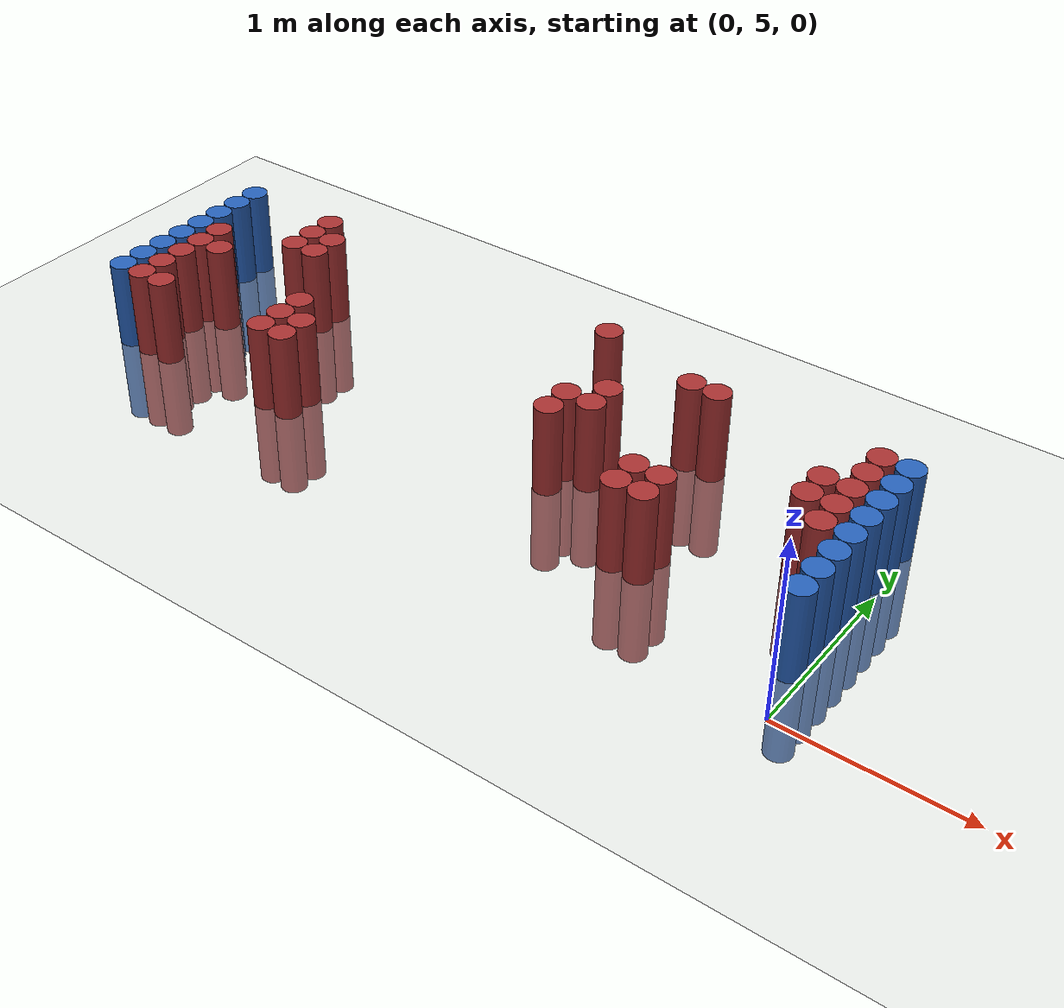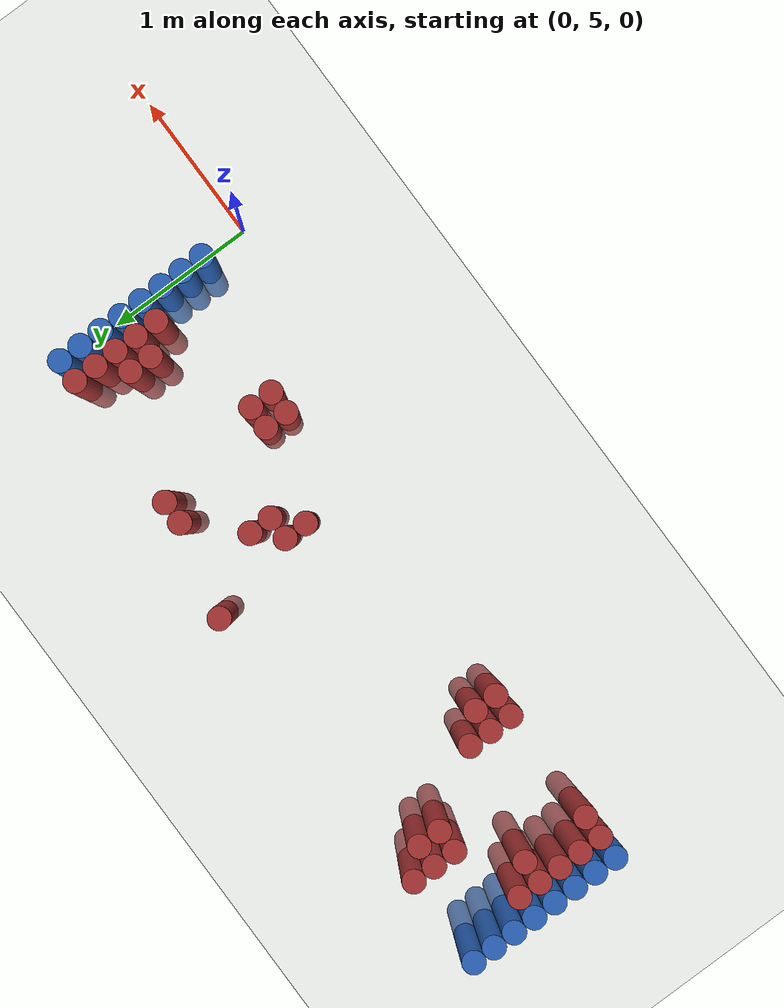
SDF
<sdf version="1.6">
 <world name="default">
  <model name="ground_plane">
   <static>1</static>
   <link name="link">
    <collision name="collision">
     <geometry><plane><normal>0 0 1</normal><size>100 100</size></plane></geometry>
     <surface><friction><ode><mu>100</mu><mu2>50</mu2></ode></friction></surface>
    </collision>
    <visual name="visual">
     <cast_shadows>0</cast_shadows>
     <geometry><plane><normal>0 0 1</normal><size>100 100</size></plane></geometry>
     <material>
      <script><uri>file://media/materials/scripts/gazebo.material</uri><name>Gazebo/Grey</name></script>
     </material>
    </visual>
   </link>
  </model>
  <model name="unit_cylinder_98">
   <static>1</static>
   <pose>-4.425000 5.475000 0.000000 0.000000 0.000000 0.000000</pose>
   <link name="link">
    <inertial>
     <mass>1</mass>
     <inertia><ixx>0.145833</ixx><ixy>0</ixy><ixz>0</ixz><iyy>0.145833</iyy><iyz>0</iyz><izz>0.125</izz></inertia>
    </inertial>
    <collision name="collision">
     <geometry><cylinder><radius>0.075000</radius><length>1</length></cylinder></geometry>
    </collision>
    <visual name="visual">
     <geometry><cylinder><radius>0.075000</radius><length>1</length></cylinder></geometry>
     <material>
      <ambient>0.152000 0.379000 0.720000 1</ambient>
      <diffuse>0.152000 0.379000 0.720000 1</diffuse>
     </material>
     <material>
      <script><name>Gazebo/Grey</name><uri>file://media/materials/scripts/gazebo.material</uri></script>
     </material>
    </visual>
   </link>
  </model>
  <model name="unit_cylinder_99">
   <static>1</static>
   <pose>-4.425000 5.625000 0.000000 0.000000 0.000000 0.000000</pose>
   <link name="link">
    <inertial>
     <mass>1</mass>
     <inertia><ixx>0.145833</ixx><ixy>0</ixy><ixz>0</ixz><iyy>0.145833</iyy><iyz>0</iyz><izz>0.125</izz></inertia>
    </inertial>
    <collision name="collision">
     <geometry><cylinder><radius>0.075000</radius><length>1</length></cylinder></geometry>
    </collision>
    <visual name="visual">
     <geometry><cylinder><radius>0.075000</radius><length>1</length></cylinder></geometry>
     <material>
      <ambient>0.152000 0.379000 0.720000 1</ambient>
      <diffuse>0.152000 0.379000 0.720000 1</diffuse>
     </material>
     <material>
      <script><name>Gazebo/Grey</name><uri>file://media/materials/scripts/gazebo.material</uri></script>
     </material>
    </visual>
   </link>
  </model>
  <model name="unit_cylinder_100">
   <static>1</static>
   <pose>-4.425000 5.775000 0.000000 0.000000 0.000000 0.000000</pose>
   <link name="link">
    <inertial>
     <mass>1</mass>
     <inertia><ixx>0.145833</ixx><ixy>0</ixy><ixz>0</ixz><iyy>0.145833</iyy><iyz>0</iyz><izz>0.125</izz></inertia>
    </inertial>
    <collision name="collision">
     <geometry><cylinder><radius>0.075000</radius><length>1</length></cylinder></geometry>
    </collision>
    <visual name="visual">
     <geometry><cylinder><radius>0.075000</radius><length>1</length></cylinder></geometry>
     <material>
      <ambient>0.152000 0.379000 0.720000 1</ambient>
      <diffuse>0.152000 0.379000 0.720000 1</diffuse>
     </material>
     <material>
      <script><name>Gazebo/Grey</name><uri>file://media/materials/scripts/gazebo.material</uri></script>
     </material>
    </visual>
   </link>
  </model>
  <model name="unit_cylinder_101">
   <static>1</static>
   <pose>-4.425000 5.925000 0.000000 0.000000 0.000000 0.000000</pose>
   <link name="link">
    <inertial>
     <mass>1</mass>
     <inertia><ixx>0.145833</ixx><ixy>0</ixy><ixz>0</ixz><iyy>0.145833</iyy><iyz>0</iyz><izz>0.125</izz></inertia>
    </inertial>
    <collision name="collision">
     <geometry><cylinder><radius>0.075000</radius><length>1</length></cylinder></geometry>
    </collision>
    <visual name="visual">
     <geometry><cylinder><radius>0.075000</radius><length>1</length></cylinder></geometry>
     <material>
      <ambient>0.152000 0.379000 0.720000 1</ambient>
      <diffuse>0.152000 0.379000 0.720000 1</diffuse>
     </material>
     <material>
      <script><name>Gazebo/Grey</name><uri>file://media/materials/scripts/gazebo.material</uri></script>
     </material>
    </visual>
   </link>
  </model>
  <model name="unit_cylinder_102">
   <static>1</static>
   <pose>-4.425000 6.075000 0.000000 0.000000 0.000000 0.000000</pose>
   <link name="link">
    <inertial>
     <mass>1</mass>
     <inertia><ixx>0.145833</ixx><ixy>0</ixy><ixz>0</ixz><iyy>0.145833</iyy><iyz>0</iyz><izz>0.125</izz></inertia>
    </inertial>
    <collision name="collision">
     <geometry><cylinder><radius>0.075000</radius><length>1</length></cylinder></geometry>
    </collision>
    <visual name="visual">
     <geometry><cylinder><radius>0.075000</radius><length>1</length></cylinder></geometry>
     <material>
      <ambient>0.152000 0.379000 0.720000 1</ambient>
      <diffuse>0.152000 0.379000 0.720000 1</diffuse>
     </material>
     <material>
      <script><name>Gazebo/Grey</name><uri>file://media/materials/scripts/gazebo.material</uri></script>
     </material>
    </visual>
   </link>
  </model>
  <model name="unit_cylinder_103">
   <static>1</static>
   <pose>-4.425000 6.225000 0.000000 0.000000 0.000000 0.000000</pose>
   <link name="link">
    <inertial>
     <mass>1</mass>
     <inertia><ixx>0.145833</ixx><ixy>0</ixy><ixz>0</ixz><iyy>0.145833</iyy><iyz>0</iyz><izz>0.125</izz></inertia>
    </inertial>
    <collision name="collision">
     <geometry><cylinder><radius>0.075000</radius><length>1</length></cylinder></geometry>
    </collision>
    <visual name="visual">
     <geometry><cylinder><radius>0.075000</radius><length>1</length></cylinder></geometry>
     <material>
      <ambient>0.152000 0.379000 0.720000 1</ambient>
      <diffuse>0.152000 0.379000 0.720000 1</diffuse>
     </material>
     <material>
      <script><name>Gazebo/Grey</name><uri>file://media/materials/scripts/gazebo.material</uri></script>
     </material>
    </visual>
   </link>
  </model>
  <model name="unit_cylinder_104">
   <static>1</static>
   <pose>-4.425000 6.375000 0.000000 0.000000 0.000000 0.000000</pose>
   <link name="link">
    <inertial>
     <mass>1</mass>
     <inertia><ixx>0.145833</ixx><ixy>0</ixy><ixz>0</ixz><iyy>0.145833</iyy><iyz>0</iyz><izz>0.125</izz></inertia>
    </inertial>
    <collision name="collision">
     <geometry><cylinder><radius>0.075000</radius><length>1</length></cylinder></geometry>
    </collision>
    <visual name="visual">
     <geometry><cylinder><radius>0.075000</radius><length>1</length></cylinder></geometry>
     <material>
      <ambient>0.152000 0.379000 0.720000 1</ambient>
      <diffuse>0.152000 0.379000 0.720000 1</diffuse>
     </material>
     <material>
      <script><name>Gazebo/Grey</name><uri>file://media/materials/scripts/gazebo.material</uri></script>
     </material>
    </visual>
   </link>
  </model>
  <model name="unit_cylinder_105">
   <static>1</static>
   <pose>-4.425000 6.525000 0.000000 0.000000 0.000000 0.000000</pose>
   <link name="link">
    <inertial>
     <mass>1</mass>
     <inertia><ixx>0.145833</ixx><ixy>0</ixy><ixz>0</ixz><iyy>0.145833</iyy><iyz>0</iyz><izz>0.125</izz></inertia>
    </inertial>
    <collision name="collision">
     <geometry><cylinder><radius>0.075000</radius><length>1</length></cylinder></geometry>
    </collision>
    <visual name="visual">
     <geometry><cylinder><radius>0.075000</radius><length>1</length></cylinder></geometry>
     <material>
      <ambient>0.152000 0.379000 0.720000 1</ambient>
      <diffuse>0.152000 0.379000 0.720000 1</diffuse>
     </material>
     <material>
      <script><name>Gazebo/Grey</name><uri>file://media/materials/scripts/gazebo.material</uri></script>
     </material>
    </visual>
   </link>
  </model>
  <model name="unit_cylinder_127">
   <static>1</static>
   <pose>-4.275000 5.475000 0.000000 0.000000 0.000000 0.000000</pose>
   <link name="link">
    <inertial>
     <mass>1</mass>
     <inertia><ixx>0.145833</ixx><ixy>0</ixy><ixz>0</ixz><iyy>0.145833</iyy><iyz>0</iyz><izz>0.125</izz></inertia>
    </inertial>
    <collision name="collision">
     <geometry><cylinder><radius>0.075000</radius><length>1</length></cylinder></geometry>
    </collision>
    <visual name="visual">
     <geometry><cylinder><radius>0.075000</radius><length>1</length></cylinder></geometry>
     <material>
      <ambient>0.648000 0.192000 0.192000 1</ambient>
      <diffuse>0.648000 0.192000 0.192000 1</diffuse>
     </material>
     <material>
      <script><name>Gazebo/Grey</name><uri>file://media/materials/scripts/gazebo.material</uri></script>
     </material>
    </visual>
   </link>
  </model>
  <model name="unit_cylinder_128">
   <static>1</static>
   <pose>-4.275000 5.625000 0.000000 0.000000 0.000000 0.000000</pose>
   <link name="link">
    <inertial>
     <mass>1</mass>
     <inertia><ixx>0.145833</ixx><ixy>0</ixy><ixz>0</ixz><iyy>0.145833</iyy><iyz>0</iyz><izz>0.125</izz></inertia>
    </inertial>
    <collision name="collision">
     <geometry><cylinder><radius>0.075000</radius><length>1</length></cylinder></geometry>
    </collision>
    <visual name="visual">
     <geometry><cylinder><radius>0.075000</radius><length>1</length></cylinder></geometry>
     <material>
      <ambient>0.648000 0.192000 0.192000 1</ambient>
      <diffuse>0.648000 0.192000 0.192000 1</diffuse>
     </material>
     <material>
      <script><name>Gazebo/Grey</name><uri>file://media/materials/scripts/gazebo.material</uri></script>
     </material>
    </visual>
   </link>
  </model>
  <model name="unit_cylinder_129">
   <static>1</static>
   <pose>-4.275000 5.775000 0.000000 0.000000 0.000000 0.000000</pose>
   <link name="link">
    <inertial>
     <mass>1</mass>
     <inertia><ixx>0.145833</ixx><ixy>0</ixy><ixz>0</ixz><iyy>0.145833</iyy><iyz>0</iyz><izz>0.125</izz></inertia>
    </inertial>
    <collision name="collision">
     <geometry><cylinder><radius>0.075000</radius><length>1</length></cylinder></geometry>
    </collision>
    <visual name="visual">
     <geometry><cylinder><radius>0.075000</radius><length>1</length></cylinder></geometry>
     <material>
      <ambient>0.648000 0.192000 0.192000 1</ambient>
      <diffuse>0.648000 0.192000 0.192000 1</diffuse>
     </material>
     <material>
      <script><name>Gazebo/Grey</name><uri>file://media/materials/scripts/gazebo.material</uri></script>
     </material>
    </visual>
   </link>
  </model>
  <model name="unit_cylinder_130">
   <static>1</static>
   <pose>-4.275000 5.925000 0.000000 0.000000 0.000000 0.000000</pose>
   <link name="link">
    <inertial>
     <mass>1</mass>
     <inertia><ixx>0.145833</ixx><ixy>0</ixy><ixz>0</ixz><iyy>0.145833</iyy><iyz>0</iyz><izz>0.125</izz></inertia>
    </inertial>
    <collision name="collision">
     <geometry><cylinder><radius>0.075000</radius><length>1</length></cylinder></geometry>
    </collision>
    <visual name="visual">
     <geometry><cylinder><radius>0.075000</radius><length>1</length></cylinder></geometry>
     <material>
      <ambient>0.648000 0.192000 0.192000 1</ambient>
      <diffuse>0.648000 0.192000 0.192000 1</diffuse>
     </material>
     <material>
      <script><name>Gazebo/Grey</name><uri>file://media/materials/scripts/gazebo.material</uri></script>
     </material>
    </visual>
   </link>
  </model>
  <model name="unit_cylinder_131">
   <static>1</static>
   <pose>-4.275000 6.075000 0.000000 0.000000 0.000000 0.000000</pose>
   <link name="link">
    <inertial>
     <mass>1</mass>
     <inertia><ixx>0.145833</ixx><ixy>0</ixy><ixz>0</ixz><iyy>0.145833</iyy><iyz>0</iyz><izz>0.125</izz></inertia>
    </inertial>
    <collision name="collision">
     <geometry><cylinder><radius>0.075000</radius><length>1</length></cylinder></geometry>
    </collision>
    <visual name="visual">
     <geometry><cylinder><radius>0.075000</radius><length>1</length></cylinder></geometry>
     <material>
      <ambient>0.648000 0.192000 0.192000 1</ambient>
      <diffuse>0.648000 0.192000 0.192000 1</diffuse>
     </material>
     <material>
      <script><name>Gazebo/Grey</name><uri>file://media/materials/scripts/gazebo.material</uri></script>
     </material>
    </visual>
   </link>
  </model>
  <model name="unit_cylinder_143">
   <static>1</static>
   <pose>-4.125000 5.475000 0.000000 0.000000 0.000000 0.000000</pose>
   <link name="link">
    <inertial>
     <mass>1</mass>
     <inertia><ixx>0.145833</ixx><ixy>0</ixy><ixz>0</ixz><iyy>0.145833</iyy><iyz>0</iyz><izz>0.125</izz></inertia>
    </inertial>
    <collision name="collision">
     <geometry><cylinder><radius>0.075000</radius><length>1</length></cylinder></geometry>
    </collision>
    <visual name="visual">
     <geometry><cylinder><radius>0.075000</radius><length>1</length></cylinder></geometry>
     <material>
      <ambient>0.648000 0.192000 0.192000 1</ambient>
      <diffuse>0.648000 0.192000 0.192000 1</diffuse>
     </material>
     <material>
      <script><name>Gazebo/Grey</name><uri>file://media/materials/scripts/gazebo.material</uri></script>
     </material>
    </visual>
   </link>
  </model>
  <model name="unit_cylinder_144">
   <static>1</static>
   <pose>-4.125000 5.925000 0.000000 0.000000 0.000000 0.000000</pose>
   <link name="link">
    <inertial>
     <mass>1</mass>
     <inertia><ixx>0.145833</ixx><ixy>0</ixy><ixz>0</ixz><iyy>0.145833</iyy><iyz>0</iyz><izz>0.125</izz></inertia>
    </inertial>
    <collision name="collision">
     <geometry><cylinder><radius>0.075000</radius><length>1</length></cylinder></geometry>
    </collision>
    <visual name="visual">
     <geometry><cylinder><radius>0.075000</radius><length>1</length></cylinder></geometry>
     <material>
      <ambient>0.648000 0.192000 0.192000 1</ambient>
      <diffuse>0.648000 0.192000 0.192000 1</diffuse>
     </material>
     <material>
      <script><name>Gazebo/Grey</name><uri>file://media/materials/scripts/gazebo.material</uri></script>
     </material>
    </visual>
   </link>
  </model>
  <model name="unit_cylinder_157">
   <static>1</static>
   <pose>-3.825000 6.225000 0.000000 0.000000 0.000000 0.000000</pose>
   <link name="link">
    <inertial>
     <mass>1</mass>
     <inertia><ixx>0.145833</ixx><ixy>0</ixy><ixz>0</ixz><iyy>0.145833</iyy><iyz>0</iyz><izz>0.125</izz></inertia>
    </inertial>
    <collision name="collision">
     <geometry><cylinder><radius>0.075000</radius><length>1</length></cylinder></geometry>
    </collision>
    <visual name="visual">
     <geometry><cylinder><radius>0.075000</radius><length>1</length></cylinder></geometry>
     <material>
      <ambient>0.648000 0.192000 0.192000 1</ambient>
      <diffuse>0.648000 0.192000 0.192000 1</diffuse>
     </material>
     <material>
      <script><name>Gazebo/Grey</name><uri>file://media/materials/scripts/gazebo.material</uri></script>
     </material>
    </visual>
   </link>
  </model>
  <model name="unit_cylinder_158">
   <static>1</static>
   <pose>-3.825000 6.375000 0.000000 0.000000 0.000000 0.000000</pose>
   <link name="link">
    <inertial>
     <mass>1</mass>
     <inertia><ixx>0.145833</ixx><ixy>0</ixy><ixz>0</ixz><iyy>0.145833</iyy><iyz>0</iyz><izz>0.125</izz></inertia>
    </inertial>
    <collision name="collision">
     <geometry><cylinder><radius>0.075000</radius><length>1</length></cylinder></geometry>
    </collision>
    <visual name="visual">
     <geometry><cylinder><radius>0.075000</radius><length>1</length></cylinder></geometry>
     <material>
      <ambient>0.648000 0.192000 0.192000 1</ambient>
      <diffuse>0.648000 0.192000 0.192000 1</diffuse>
     </material>
     <material>
      <script><name>Gazebo/Grey</name><uri>file://media/materials/scripts/gazebo.material</uri></script>
     </material>
    </visual>
   </link>
  </model>
  <model name="unit_cylinder_159">
   <static>1</static>
   <pose>-3.825000 6.525000 0.000000 0.000000 0.000000 0.000000</pose>
   <link name="link">
    <inertial>
     <mass>1</mass>
     <inertia><ixx>0.145833</ixx><ixy>0</ixy><ixz>0</ixz><iyy>0.145833</iyy><iyz>0</iyz><izz>0.125</izz></inertia>
    </inertial>
    <collision name="collision">
     <geometry><cylinder><radius>0.075000</radius><length>1</length></cylinder></geometry>
    </collision>
    <visual name="visual">
     <geometry><cylinder><radius>0.075000</radius><length>1</length></cylinder></geometry>
     <material>
      <ambient>0.648000 0.192000 0.192000 1</ambient>
      <diffuse>0.648000 0.192000 0.192000 1</diffuse>
     </material>
     <material>
      <script><name>Gazebo/Grey</name><uri>file://media/materials/scripts/gazebo.material</uri></script>
     </material>
    </visual>
   </link>
  </model>
  <model name="unit_cylinder_162">
   <static>1</static>
   <pose>-3.675000 6.225000 0.000000 0.000000 0.000000 0.000000</pose>
   <link name="link">
    <inertial>
     <mass>1</mass>
     <inertia><ixx>0.145833</ixx><ixy>0</ixy><ixz>0</ixz><iyy>0.145833</iyy><iyz>0</iyz><izz>0.125</izz></inertia>
    </inertial>
    <collision name="collision">
     <geometry><cylinder><radius>0.075000</radius><length>1</length></cylinder></geometry>
    </collision>
    <visual name="visual">
     <geometry><cylinder><radius>0.075000</radius><length>1</length></cylinder></geometry>
     <material>
      <ambient>0.648000 0.192000 0.192000 1</ambient>
      <diffuse>0.648000 0.192000 0.192000 1</diffuse>
     </material>
     <material>
      <script><name>Gazebo/Grey</name><uri>file://media/materials/scripts/gazebo.material</uri></script>
     </material>
    </visual>
   </link>
  </model>
  <model name="unit_cylinder_163">
   <static>1</static>
   <pose>-3.675000 6.375000 0.000000 0.000000 0.000000 0.000000</pose>
   <link name="link">
    <inertial>
     <mass>1</mass>
     <inertia><ixx>0.145833</ixx><ixy>0</ixy><ixz>0</ixz><iyy>0.145833</iyy><iyz>0</iyz><izz>0.125</izz></inertia>
    </inertial>
    <collision name="collision">
     <geometry><cylinder><radius>0.075000</radius><length>1</length></cylinder></geometry>
    </collision>
    <visual name="visual">
     <geometry><cylinder><radius>0.075000</radius><length>1</length></cylinder></geometry>
     <material>
      <ambient>0.648000 0.192000 0.192000 1</ambient>
      <diffuse>0.648000 0.192000 0.192000 1</diffuse>
     </material>
     <material>
      <script><name>Gazebo/Grey</name><uri>file://media/materials/scripts/gazebo.material</uri></script>
     </material>
    </visual>
   </link>
  </model>
  <model name="unit_cylinder_171">
   <static>1</static>
   <pose>-3.375000 5.475000 0.000000 0.000000 0.000000 0.000000</pose>
   <link name="link">
    <inertial>
     <mass>1</mass>
     <inertia><ixx>0.145833</ixx><ixy>0</ixy><ixz>0</ixz><iyy>0.145833</iyy><iyz>0</iyz><izz>0.125</izz></inertia>
    </inertial>
    <collision name="collision">
     <geometry><cylinder><radius>0.075000</radius><length>1</length></cylinder></geometry>
    </collision>
    <visual name="visual">
     <geometry><cylinder><radius>0.075000</radius><length>1</length></cylinder></geometry>
     <material>
      <ambient>0.648000 0.192000 0.192000 1</ambient>
      <diffuse>0.648000 0.192000 0.192000 1</diffuse>
     </material>
     <material>
      <script><name>Gazebo/Grey</name><uri>file://media/materials/scripts/gazebo.material</uri></script>
     </material>
    </visual>
   </link>
  </model>
  <model name="unit_cylinder_172">
   <static>1</static>
   <pose>-3.375000 5.625000 0.000000 0.000000 0.000000 0.000000</pose>
   <link name="link">
    <inertial>
     <mass>1</mass>
     <inertia><ixx>0.145833</ixx><ixy>0</ixy><ixz>0</ixz><iyy>0.145833</iyy><iyz>0</iyz><izz>0.125</izz></inertia>
    </inertial>
    <collision name="collision">
     <geometry><cylinder><radius>0.075000</radius><length>1</length></cylinder></geometry>
    </collision>
    <visual name="visual">
     <geometry><cylinder><radius>0.075000</radius><length>1</length></cylinder></geometry>
     <material>
      <ambient>0.648000 0.192000 0.192000 1</ambient>
      <diffuse>0.648000 0.192000 0.192000 1</diffuse>
     </material>
     <material>
      <script><name>Gazebo/Grey</name><uri>file://media/materials/scripts/gazebo.material</uri></script>
     </material>
    </visual>
   </link>
  </model>
  <model name="unit_cylinder_173">
   <static>1</static>
   <pose>-3.375000 5.775000 0.000000 0.000000 0.000000 0.000000</pose>
   <link name="link">
    <inertial>
     <mass>1</mass>
     <inertia><ixx>0.145833</ixx><ixy>0</ixy><ixz>0</ixz><iyy>0.145833</iyy><iyz>0</iyz><izz>0.125</izz></inertia>
    </inertial>
    <collision name="collision">
     <geometry><cylinder><radius>0.075000</radius><length>1</length></cylinder></geometry>
    </collision>
    <visual name="visual">
     <geometry><cylinder><radius>0.075000</radius><length>1</length></cylinder></geometry>
     <material>
      <ambient>0.648000 0.192000 0.192000 1</ambient>
      <diffuse>0.648000 0.192000 0.192000 1</diffuse>
     </material>
     <material>
      <script><name>Gazebo/Grey</name><uri>file://media/materials/scripts/gazebo.material</uri></script>
     </material>
    </visual>
   </link>
  </model>
  <model name="unit_cylinder_180">
   <static>1</static>
   <pose>-3.225000 5.475000 0.000000 0.000000 0.000000 0.000000</pose>
   <link name="link">
    <inertial>
     <mass>1</mass>
     <inertia><ixx>0.145833</ixx><ixy>0</ixy><ixz>0</ixz><iyy>0.145833</iyy><iyz>0</iyz><izz>0.125</izz></inertia>
    </inertial>
    <collision name="collision">
     <geometry><cylinder><radius>0.075000</radius><length>1</length></cylinder></geometry>
    </collision>
    <visual name="visual">
     <geometry><cylinder><radius>0.075000</radius><length>1</length></cylinder></geometry>
     <material>
      <ambient>0.648000 0.192000 0.192000 1</ambient>
      <diffuse>0.648000 0.192000 0.192000 1</diffuse>
     </material>
     <material>
      <script><name>Gazebo/Grey</name><uri>file://media/materials/scripts/gazebo.material</uri></script>
     </material>
    </visual>
   </link>
  </model>
  <model name="unit_cylinder_181">
   <static>1</static>
   <pose>-3.225000 5.625000 0.000000 0.000000 0.000000 0.000000</pose>
   <link name="link">
    <inertial>
     <mass>1</mass>
     <inertia><ixx>0.145833</ixx><ixy>0</ixy><ixz>0</ixz><iyy>0.145833</iyy><iyz>0</iyz><izz>0.125</izz></inertia>
    </inertial>
    <collision name="collision">
     <geometry><cylinder><radius>0.075000</radius><length>1</length></cylinder></geometry>
    </collision>
    <visual name="visual">
     <geometry><cylinder><radius>0.075000</radius><length>1</length></cylinder></geometry>
     <material>
      <ambient>0.648000 0.192000 0.192000 1</ambient>
      <diffuse>0.648000 0.192000 0.192000 1</diffuse>
     </material>
     <material>
      <script><name>Gazebo/Grey</name><uri>file://media/materials/scripts/gazebo.material</uri></script>
     </material>
    </visual>
   </link>
  </model>
  <model name="unit_cylinder_198">
   <static>1</static>
   <pose>-1.875000 6.525000 0.000000 0.000000 0.000000 0.000000</pose>
   <link name="link">
    <inertial>
     <mass>1</mass>
     <inertia><ixx>0.145833</ixx><ixy>0</ixy><ixz>0</ixz><iyy>0.145833</iyy><iyz>0</iyz><izz>0.125</izz></inertia>
    </inertial>
    <collision name="collision">
     <geometry><cylinder><radius>0.075000</radius><length>1</length></cylinder></geometry>
    </collision>
    <visual name="visual">
     <geometry><cylinder><radius>0.075000</radius><length>1</length></cylinder></geometry>
     <material>
      <ambient>0.648000 0.192000 0.192000 1</ambient>
      <diffuse>0.648000 0.192000 0.192000 1</diffuse>
     </material>
     <material>
      <script><name>Gazebo/Grey</name><uri>file://media/materials/scripts/gazebo.material</uri></script>
     </material>
    </visual>
   </link>
  </model>
  <model name="unit_cylinder_203">
   <static>1</static>
   <pose>-1.725000 5.775000 0.000000 0.000000 0.000000 0.000000</pose>
   <link name="link">
    <inertial>
     <mass>1</mass>
     <inertia><ixx>0.145833</ixx><ixy>0</ixy><ixz>0</ixz><iyy>0.145833</iyy><iyz>0</iyz><izz>0.125</izz></inertia>
    </inertial>
    <collision name="collision">
     <geometry><cylinder><radius>0.075000</radius><length>1</length></cylinder></geometry>
    </collision>
    <visual name="visual">
     <geometry><cylinder><radius>0.075000</radius><length>1</length></cylinder></geometry>
     <material>
      <ambient>0.648000 0.192000 0.192000 1</ambient>
      <diffuse>0.648000 0.192000 0.192000 1</diffuse>
     </material>
     <material>
      <script><name>Gazebo/Grey</name><uri>file://media/materials/scripts/gazebo.material</uri></script>
     </material>
    </visual>
   </link>
  </model>
  <model name="unit_cylinder_204">
   <static>1</static>
   <pose>-1.725000 5.925000 0.000000 0.000000 0.000000 0.000000</pose>
   <link name="link">
    <inertial>
     <mass>1</mass>
     <inertia><ixx>0.145833</ixx><ixy>0</ixy><ixz>0</ixz><iyy>0.145833</iyy><iyz>0</iyz><izz>0.125</izz></inertia>
    </inertial>
    <collision name="collision">
     <geometry><cylinder><radius>0.075000</radius><length>1</length></cylinder></geometry>
    </collision>
    <visual name="visual">
     <geometry><cylinder><radius>0.075000</radius><length>1</length></cylinder></geometry>
     <material>
      <ambient>0.648000 0.192000 0.192000 1</ambient>
      <diffuse>0.648000 0.192000 0.192000 1</diffuse>
     </material>
     <material>
      <script><name>Gazebo/Grey</name><uri>file://media/materials/scripts/gazebo.material</uri></script>
     </material>
    </visual>
   </link>
  </model>
  <model name="unit_cylinder_215">
   <static>1</static>
   <pose>-1.575000 5.925000 0.000000 0.000000 0.000000 0.000000</pose>
   <link name="link">
    <inertial>
     <mass>1</mass>
     <inertia><ixx>0.145833</ixx><ixy>0</ixy><ixz>0</ixz><iyy>0.145833</iyy><iyz>0</iyz><izz>0.125</izz></inertia>
    </inertial>
    <collision name="collision">
     <geometry><cylinder><radius>0.075000</radius><length>1</length></cylinder></geometry>
    </collision>
    <visual name="visual">
     <geometry><cylinder><radius>0.075000</radius><length>1</length></cylinder></geometry>
     <material>
      <ambient>0.648000 0.192000 0.192000 1</ambient>
      <diffuse>0.648000 0.192000 0.192000 1</diffuse>
     </material>
     <material>
      <script><name>Gazebo/Grey</name><uri>file://media/materials/scripts/gazebo.material</uri></script>
     </material>
    </visual>
   </link>
  </model>
  <model name="unit_cylinder_216">
   <static>1</static>
   <pose>-1.575000 6.075000 0.000000 0.000000 0.000000 0.000000</pose>
   <link name="link">
    <inertial>
     <mass>1</mass>
     <inertia><ixx>0.145833</ixx><ixy>0</ixy><ixz>0</ixz><iyy>0.145833</iyy><iyz>0</iyz><izz>0.125</izz></inertia>
    </inertial>
    <collision name="collision">
     <geometry><cylinder><radius>0.075000</radius><length>1</length></cylinder></geometry>
    </collision>
    <visual name="visual">
     <geometry><cylinder><radius>0.075000</radius><length>1</length></cylinder></geometry>
     <material>
      <ambient>0.648000 0.192000 0.192000 1</ambient>
      <diffuse>0.648000 0.192000 0.192000 1</diffuse>
     </material>
     <material>
      <script><name>Gazebo/Grey</name><uri>file://media/materials/scripts/gazebo.material</uri></script>
     </material>
    </visual>
   </link>
  </model>
  <model name="unit_cylinder_233">
   <static>1</static>
   <pose>-1.275000 6.375000 0.000000 0.000000 0.000000 0.000000</pose>
   <link name="link">
    <inertial>
     <mass>1</mass>
     <inertia><ixx>0.145833</ixx><ixy>0</ixy><ixz>0</ixz><iyy>0.145833</iyy><iyz>0</iyz><izz>0.125</izz></inertia>
    </inertial>
    <collision name="collision">
     <geometry><cylinder><radius>0.075000</radius><length>1</length></cylinder></geometry>
    </collision>
    <visual name="visual">
     <geometry><cylinder><radius>0.075000</radius><length>1</length></cylinder></geometry>
     <material>
      <ambient>0.648000 0.192000 0.192000 1</ambient>
      <diffuse>0.648000 0.192000 0.192000 1</diffuse>
     </material>
     <material>
      <script><name>Gazebo/Grey</name><uri>file://media/materials/scripts/gazebo.material</uri></script>
     </material>
    </visual>
   </link>
  </model>
  <model name="unit_cylinder_236">
   <static>1</static>
   <pose>-1.125000 5.475000 0.000000 0.000000 0.000000 0.000000</pose>
   <link name="link">
    <inertial>
     <mass>1</mass>
     <inertia><ixx>0.145833</ixx><ixy>0</ixy><ixz>0</ixz><iyy>0.145833</iyy><iyz>0</iyz><izz>0.125</izz></inertia>
    </inertial>
    <collision name="collision">
     <geometry><cylinder><radius>0.075000</radius><length>1</length></cylinder></geometry>
    </collision>
    <visual name="visual">
     <geometry><cylinder><radius>0.075000</radius><length>1</length></cylinder></geometry>
     <material>
      <ambient>0.648000 0.192000 0.192000 1</ambient>
      <diffuse>0.648000 0.192000 0.192000 1</diffuse>
     </material>
     <material>
      <script><name>Gazebo/Grey</name><uri>file://media/materials/scripts/gazebo.material</uri></script>
     </material>
    </visual>
   </link>
  </model>
  <model name="unit_cylinder_237">
   <static>1</static>
   <pose>-1.125000 5.625000 0.000000 0.000000 0.000000 0.000000</pose>
   <link name="link">
    <inertial>
     <mass>1</mass>
     <inertia><ixx>0.145833</ixx><ixy>0</ixy><ixz>0</ixz><iyy>0.145833</iyy><iyz>0</iyz><izz>0.125</izz></inertia>
    </inertial>
    <collision name="collision">
     <geometry><cylinder><radius>0.075000</radius><length>1</length></cylinder></geometry>
    </collision>
    <visual name="visual">
     <geometry><cylinder><radius>0.075000</radius><length>1</length></cylinder></geometry>
     <material>
      <ambient>0.648000 0.192000 0.192000 1</ambient>
      <diffuse>0.648000 0.192000 0.192000 1</diffuse>
     </material>
     <material>
      <script><name>Gazebo/Grey</name><uri>file://media/materials/scripts/gazebo.material</uri></script>
     </material>
    </visual>
   </link>
  </model>
  <model name="unit_cylinder_238">
   <static>1</static>
   <pose>-1.125000 6.375000 0.000000 0.000000 0.000000 0.000000</pose>
   <link name="link">
    <inertial>
     <mass>1</mass>
     <inertia><ixx>0.145833</ixx><ixy>0</ixy><ixz>0</ixz><iyy>0.145833</iyy><iyz>0</iyz><izz>0.125</izz></inertia>
    </inertial>
    <collision name="collision">
     <geometry><cylinder><radius>0.075000</radius><length>1</length></cylinder></geometry>
    </collision>
    <visual name="visual">
     <geometry><cylinder><radius>0.075000</radius><length>1</length></cylinder></geometry>
     <material>
      <ambient>0.648000 0.192000 0.192000 1</ambient>
      <diffuse>0.648000 0.192000 0.192000 1</diffuse>
     </material>
     <material>
      <script><name>Gazebo/Grey</name><uri>file://media/materials/scripts/gazebo.material</uri></script>
     </material>
    </visual>
   </link>
  </model>
  <model name="unit_cylinder_243">
   <static>1</static>
   <pose>-0.975000 5.475000 0.000000 0.000000 0.000000 0.000000</pose>
   <link name="link">
    <inertial>
     <mass>1</mass>
     <inertia><ixx>0.145833</ixx><ixy>0</ixy><ixz>0</ixz><iyy>0.145833</iyy><iyz>0</iyz><izz>0.125</izz></inertia>
    </inertial>
    <collision name="collision">
     <geometry><cylinder><radius>0.075000</radius><length>1</length></cylinder></geometry>
    </collision>
    <visual name="visual">
     <geometry><cylinder><radius>0.075000</radius><length>1</length></cylinder></geometry>
     <material>
      <ambient>0.648000 0.192000 0.192000 1</ambient>
      <diffuse>0.648000 0.192000 0.192000 1</diffuse>
     </material>
     <material>
      <script><name>Gazebo/Grey</name><uri>file://media/materials/scripts/gazebo.material</uri></script>
     </material>
    </visual>
   </link>
  </model>
  <model name="unit_cylinder_244">
   <static>1</static>
   <pose>-0.975000 5.625000 0.000000 0.000000 0.000000 0.000000</pose>
   <link name="link">
    <inertial>
     <mass>1</mass>
     <inertia><ixx>0.145833</ixx><ixy>0</ixy><ixz>0</ixz><iyy>0.145833</iyy><iyz>0</iyz><izz>0.125</izz></inertia>
    </inertial>
    <collision name="collision">
     <geometry><cylinder><radius>0.075000</radius><length>1</length></cylinder></geometry>
    </collision>
    <visual name="visual">
     <geometry><cylinder><radius>0.075000</radius><length>1</length></cylinder></geometry>
     <material>
      <ambient>0.648000 0.192000 0.192000 1</ambient>
      <diffuse>0.648000 0.192000 0.192000 1</diffuse>
     </material>
     <material>
      <script><name>Gazebo/Grey</name><uri>file://media/materials/scripts/gazebo.material</uri></script>
     </material>
    </visual>
   </link>
  </model>
  <model name="unit_cylinder_258">
   <static>1</static>
   <pose>-0.375000 5.925000 0.000000 0.000000 0.000000 0.000000</pose>
   <link name="link">
    <inertial>
     <mass>1</mass>
     <inertia><ixx>0.145833</ixx><ixy>0</ixy><ixz>0</ixz><iyy>0.145833</iyy><iyz>0</iyz><izz>0.125</izz></inertia>
    </inertial>
    <collision name="collision">
     <geometry><cylinder><radius>0.075000</radius><length>1</length></cylinder></geometry>
    </collision>
    <visual name="visual">
     <geometry><cylinder><radius>0.075000</radius><length>1</length></cylinder></geometry>
     <material>
      <ambient>0.648000 0.192000 0.192000 1</ambient>
      <diffuse>0.648000 0.192000 0.192000 1</diffuse>
     </material>
     <material>
      <script><name>Gazebo/Grey</name><uri>file://media/materials/scripts/gazebo.material</uri></script>
     </material>
    </visual>
   </link>
  </model>
  <model name="unit_cylinder_259">
   <static>1</static>
   <pose>-0.375000 6.075000 0.000000 0.000000 0.000000 0.000000</pose>
   <link name="link">
    <inertial>
     <mass>1</mass>
     <inertia><ixx>0.145833</ixx><ixy>0</ixy><ixz>0</ixz><iyy>0.145833</iyy><iyz>0</iyz><izz>0.125</izz></inertia>
    </inertial>
    <collision name="collision">
     <geometry><cylinder><radius>0.075000</radius><length>1</length></cylinder></geometry>
    </collision>
    <visual name="visual">
     <geometry><cylinder><radius>0.075000</radius><length>1</length></cylinder></geometry>
     <material>
      <ambient>0.648000 0.192000 0.192000 1</ambient>
      <diffuse>0.648000 0.192000 0.192000 1</diffuse>
     </material>
     <material>
      <script><name>Gazebo/Grey</name><uri>file://media/materials/scripts/gazebo.material</uri></script>
     </material>
    </visual>
   </link>
  </model>
  <model name="unit_cylinder_264">
   <static>1</static>
   <pose>-0.225000 5.775000 0.000000 0.000000 0.000000 0.000000</pose>
   <link name="link">
    <inertial>
     <mass>1</mass>
     <inertia><ixx>0.145833</ixx><ixy>0</ixy><ixz>0</ixz><iyy>0.145833</iyy><iyz>0</iyz><izz>0.125</izz></inertia>
    </inertial>
    <collision name="collision">
     <geometry><cylinder><radius>0.075000</radius><length>1</length></cylinder></geometry>
    </collision>
    <visual name="visual">
     <geometry><cylinder><radius>0.075000</radius><length>1</length></cylinder></geometry>
     <material>
      <ambient>0.648000 0.192000 0.192000 1</ambient>
      <diffuse>0.648000 0.192000 0.192000 1</diffuse>
     </material>
     <material>
      <script><name>Gazebo/Grey</name><uri>file://media/materials/scripts/gazebo.material</uri></script>
     </material>
    </visual>
   </link>
  </model>
  <model name="unit_cylinder_265">
   <static>1</static>
   <pose>-0.225000 5.925000 0.000000 0.000000 0.000000 0.000000</pose>
   <link name="link">
    <inertial>
     <mass>1</mass>
     <inertia><ixx>0.145833</ixx><ixy>0</ixy><ixz>0</ixz><iyy>0.145833</iyy><iyz>0</iyz><izz>0.125</izz></inertia>
    </inertial>
    <collision name="collision">
     <geometry><cylinder><radius>0.075000</radius><length>1</length></cylinder></geometry>
    </collision>
    <visual name="visual">
     <geometry><cylinder><radius>0.075000</radius><length>1</length></cylinder></geometry>
     <material>
      <ambient>0.648000 0.192000 0.192000 1</ambient>
      <diffuse>0.648000 0.192000 0.192000 1</diffuse>
     </material>
     <material>
      <script><name>Gazebo/Grey</name><uri>file://media/materials/scripts/gazebo.material</uri></script>
     </material>
    </visual>
   </link>
  </model>
  <model name="unit_cylinder_266">
   <static>1</static>
   <pose>-0.225000 6.075000 0.000000 0.000000 0.000000 0.000000</pose>
   <link name="link">
    <inertial>
     <mass>1</mass>
     <inertia><ixx>0.145833</ixx><ixy>0</ixy><ixz>0</ixz><iyy>0.145833</iyy><iyz>0</iyz><izz>0.125</izz></inertia>
    </inertial>
    <collision name="collision">
     <geometry><cylinder><radius>0.075000</radius><length>1</length></cylinder></geometry>
    </collision>
    <visual name="visual">
     <geometry><cylinder><radius>0.075000</radius><length>1</length></cylinder></geometry>
     <material>
      <ambient>0.648000 0.192000 0.192000 1</ambient>
      <diffuse>0.648000 0.192000 0.192000 1</diffuse>
     </material>
     <material>
      <script><name>Gazebo/Grey</name><uri>file://media/materials/scripts/gazebo.material</uri></script>
     </material>
    </visual>
   </link>
  </model>
  <model name="unit_cylinder_267">
   <static>1</static>
   <pose>-0.225000 6.225000 0.000000 0.000000 0.000000 0.000000</pose>
   <link name="link">
    <inertial>
     <mass>1</mass>
     <inertia><ixx>0.145833</ixx><ixy>0</ixy><ixz>0</ixz><iyy>0.145833</iyy><iyz>0</iyz><izz>0.125</izz></inertia>
    </inertial>
    <collision name="collision">
     <geometry><cylinder><radius>0.075000</radius><length>1</length></cylinder></geometry>
    </collision>
    <visual name="visual">
     <geometry><cylinder><radius>0.075000</radius><length>1</length></cylinder></geometry>
     <material>
      <ambient>0.648000 0.192000 0.192000 1</ambient>
      <diffuse>0.648000 0.192000 0.192000 1</diffuse>
     </material>
     <material>
      <script><name>Gazebo/Grey</name><uri>file://media/materials/scripts/gazebo.material</uri></script>
     </material>
    </visual>
   </link>
  </model>
  <model name="unit_cylinder_268">
   <static>1</static>
   <pose>-0.225000 6.375000 0.000000 0.000000 0.000000 0.000000</pose>
   <link name="link">
    <inertial>
     <mass>1</mass>
     <inertia><ixx>0.145833</ixx><ixy>0</ixy><ixz>0</ixz><iyy>0.145833</iyy><iyz>0</iyz><izz>0.125</izz></inertia>
    </inertial>
    <collision name="collision">
     <geometry><cylinder><radius>0.075000</radius><length>1</length></cylinder></geometry>
    </collision>
    <visual name="visual">
     <geometry><cylinder><radius>0.075000</radius><length>1</length></cylinder></geometry>
     <material>
      <ambient>0.648000 0.192000 0.192000 1</ambient>
      <diffuse>0.648000 0.192000 0.192000 1</diffuse>
     </material>
     <material>
      <script><name>Gazebo/Grey</name><uri>file://media/materials/scripts/gazebo.material</uri></script>
     </material>
    </visual>
   </link>
  </model>
  <model name="unit_cylinder_280">
   <static>1</static>
   <pose>-0.075000 5.325000 0.000000 0.000000 0.000000 0.000000</pose>
   <link name="link">
    <inertial>
     <mass>1</mass>
     <inertia><ixx>0.145833</ixx><ixy>0</ixy><ixz>0</ixz><iyy>0.145833</iyy><iyz>0</iyz><izz>0.125</izz></inertia>
    </inertial>
    <collision name="collision">
     <geometry><cylinder><radius>0.075000</radius><length>1</length></cylinder></geometry>
    </collision>
    <visual name="visual">
     <geometry><cylinder><radius>0.075000</radius><length>1</length></cylinder></geometry>
     <material>
      <ambient>0.152000 0.379000 0.720000 1</ambient>
      <diffuse>0.152000 0.379000 0.720000 1</diffuse>
     </material>
     <material>
      <script><name>Gazebo/Grey</name><uri>file://media/materials/scripts/gazebo.material</uri></script>
     </material>
    </visual>
   </link>
  </model>
  <model name="unit_cylinder_281">
   <static>1</static>
   <pose>-0.075000 5.475000 0.000000 0.000000 0.000000 0.000000</pose>
   <link name="link">
    <inertial>
     <mass>1</mass>
     <inertia><ixx>0.145833</ixx><ixy>0</ixy><ixz>0</ixz><iyy>0.145833</iyy><iyz>0</iyz><izz>0.125</izz></inertia>
    </inertial>
    <collision name="collision">
     <geometry><cylinder><radius>0.075000</radius><length>1</length></cylinder></geometry>
    </collision>
    <visual name="visual">
     <geometry><cylinder><radius>0.075000</radius><length>1</length></cylinder></geometry>
     <material>
      <ambient>0.152000 0.379000 0.720000 1</ambient>
      <diffuse>0.152000 0.379000 0.720000 1</diffuse>
     </material>
     <material>
      <script><name>Gazebo/Grey</name><uri>file://media/materials/scripts/gazebo.material</uri></script>
     </material>
    </visual>
   </link>
  </model>
  <model name="unit_cylinder_282">
   <static>1</static>
   <pose>-0.075000 5.625000 0.000000 0.000000 0.000000 0.000000</pose>
   <link name="link">
    <inertial>
     <mass>1</mass>
     <inertia><ixx>0.145833</ixx><ixy>0</ixy><ixz>0</ixz><iyy>0.145833</iyy><iyz>0</iyz><izz>0.125</izz></inertia>
    </inertial>
    <collision name="collision">
     <geometry><cylinder><radius>0.075000</radius><length>1</length></cylinder></geometry>
    </collision>
    <visual name="visual">
     <geometry><cylinder><radius>0.075000</radius><length>1</length></cylinder></geometry>
     <material>
      <ambient>0.152000 0.379000 0.720000 1</ambient>
      <diffuse>0.152000 0.379000 0.720000 1</diffuse>
     </material>
     <material>
      <script><name>Gazebo/Grey</name><uri>file://media/materials/scripts/gazebo.material</uri></script>
     </material>
    </visual>
   </link>
  </model>
  <model name="unit_cylinder_283">
   <static>1</static>
   <pose>-0.075000 5.775000 0.000000 0.000000 0.000000 0.000000</pose>
   <link name="link">
    <inertial>
     <mass>1</mass>
     <inertia><ixx>0.145833</ixx><ixy>0</ixy><ixz>0</ixz><iyy>0.145833</iyy><iyz>0</iyz><izz>0.125</izz></inertia>
    </inertial>
    <collision name="collision">
     <geometry><cylinder><radius>0.075000</radius><length>1</length></cylinder></geometry>
    </collision>
    <visual name="visual">
     <geometry><cylinder><radius>0.075000</radius><length>1</length></cylinder></geometry>
     <material>
      <ambient>0.152000 0.379000 0.720000 1</ambient>
      <diffuse>0.152000 0.379000 0.720000 1</diffuse>
     </material>
     <material>
      <script><name>Gazebo/Grey</name><uri>file://media/materials/scripts/gazebo.material</uri></script>
     </material>
    </visual>
   </link>
  </model>
  <model name="unit_cylinder_284">
   <static>1</static>
   <pose>-0.075000 5.925000 0.000000 0.000000 0.000000 0.000000</pose>
   <link name="link">
    <inertial>
     <mass>1</mass>
     <inertia><ixx>0.145833</ixx><ixy>0</ixy><ixz>0</ixz><iyy>0.145833</iyy><iyz>0</iyz><izz>0.125</izz></inertia>
    </inertial>
    <collision name="collision">
     <geometry><cylinder><radius>0.075000</radius><length>1</length></cylinder></geometry>
    </collision>
    <visual name="visual">
     <geometry><cylinder><radius>0.075000</radius><length>1</length></cylinder></geometry>
     <material>
      <ambient>0.152000 0.379000 0.720000 1</ambient>
      <diffuse>0.152000 0.379000 0.720000 1</diffuse>
     </material>
     <material>
      <script><name>Gazebo/Grey</name><uri>file://media/materials/scripts/gazebo.material</uri></script>
     </material>
    </visual>
   </link>
  </model>
  <model name="unit_cylinder_285">
   <static>1</static>
   <pose>-0.075000 6.075000 0.000000 0.000000 0.000000 0.000000</pose>
   <link name="link">
    <inertial>
     <mass>1</mass>
     <inertia><ixx>0.145833</ixx><ixy>0</ixy><ixz>0</ixz><iyy>0.145833</iyy><iyz>0</iyz><izz>0.125</izz></inertia>
    </inertial>
    <collision name="collision">
     <geometry><cylinder><radius>0.075000</radius><length>1</length></cylinder></geometry>
    </collision>
    <visual name="visual">
     <geometry><cylinder><radius>0.075000</radius><length>1</length></cylinder></geometry>
     <material>
      <ambient>0.152000 0.379000 0.720000 1</ambient>
      <diffuse>0.152000 0.379000 0.720000 1</diffuse>
     </material>
     <material>
      <script><name>Gazebo/Grey</name><uri>file://media/materials/scripts/gazebo.material</uri></script>
     </material>
    </visual>
   </link>
  </model>
  <model name="unit_cylinder_286">
   <static>1</static>
   <pose>-0.075000 6.225000 0.000000 0.000000 0.000000 0.000000</pose>
   <link name="link">
    <inertial>
     <mass>1</mass>
     <inertia><ixx>0.145833</ixx><ixy>0</ixy><ixz>0</ixz><iyy>0.145833</iyy><iyz>0</iyz><izz>0.125</izz></inertia>
    </inertial>
    <collision name="collision">
     <geometry><cylinder><radius>0.075000</radius><length>1</length></cylinder></geometry>
    </collision>
    <visual name="visual">
     <geometry><cylinder><radius>0.075000</radius><length>1</length></cylinder></geometry>
     <material>
      <ambient>0.152000 0.379000 0.720000 1</ambient>
      <diffuse>0.152000 0.379000 0.720000 1</diffuse>
     </material>
     <material>
      <script><name>Gazebo/Grey</name><uri>file://media/materials/scripts/gazebo.material</uri></script>
     </material>
    </visual>
   </link>
  </model>
  <model name="unit_cylinder_287">
   <static>1</static>
   <pose>-0.075000 6.375000 0.000000 0.000000 0.000000 0.000000</pose>
   <link name="link">
    <inertial>
     <mass>1</mass>
     <inertia><ixx>0.145833</ixx><ixy>0</ixy><ixz>0</ixz><iyy>0.145833</iyy><iyz>0</iyz><izz>0.125</izz></inertia>
    </inertial>
    <collision name="collision">
     <geometry><cylinder><radius>0.075000</radius><length>1</length></cylinder></geometry>
    </collision>
    <visual name="visual">
     <geometry><cylinder><radius>0.075000</radius><length>1</length></cylinder></geometry>
     <material>
      <ambient>0.152000 0.379000 0.720000 1</ambient>
      <diffuse>0.152000 0.379000 0.720000 1</diffuse>
     </material>
     <material>
      <script><name>Gazebo/Grey</name><uri>file://media/materials/scripts/gazebo.material</uri></script>
     </material>
    </visual>
   </link>
  </model>
 </world>
</sdf>
